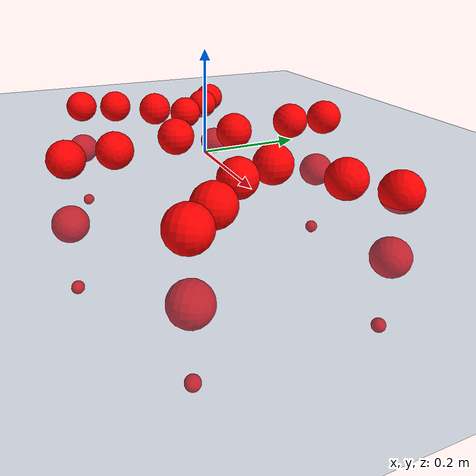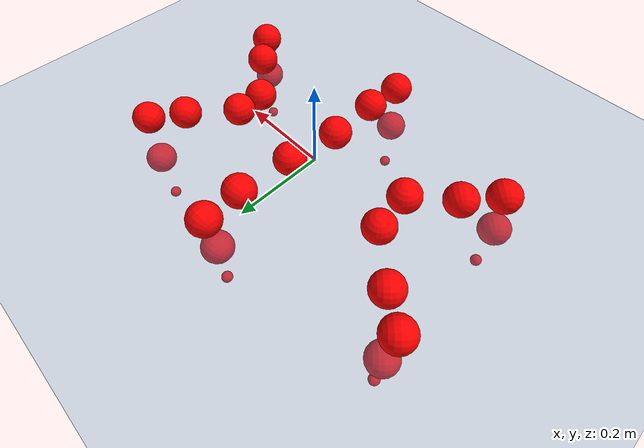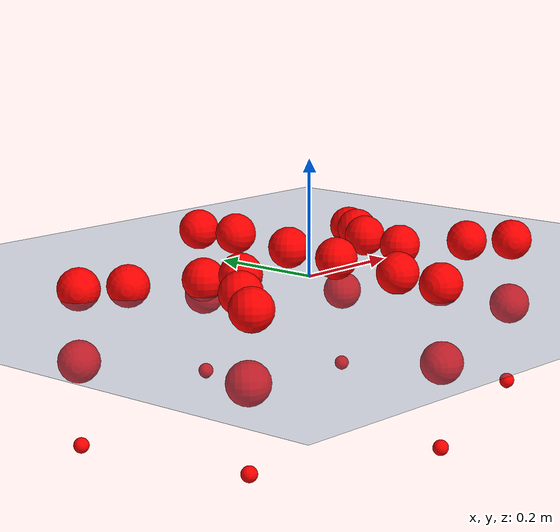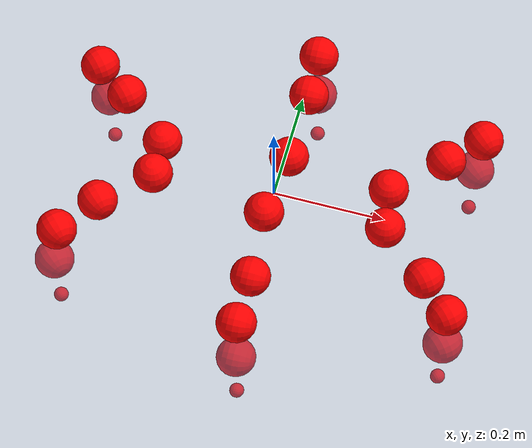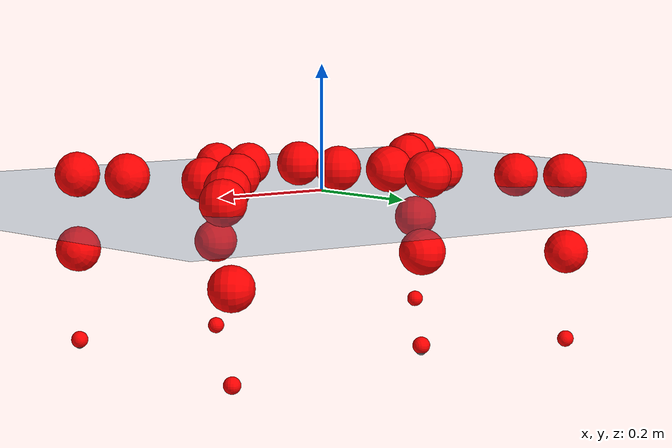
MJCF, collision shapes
<mujoco model="Golem">
  <compiler angle="radian" assetdir="assets" balanceinertia="true" inertiafromgeom="false"/>

  <option timestep="0.005" density="1.2" viscosity="2e-05"/>

  <size nkey="1"/>

  <visual>
    <quality shadowsize="8192"/>
    <map shadowclip="0.5"/>
  </visual>

  <default>
    <default class="/">
      <joint armature="0.01" damping="0.01" frictionloss="0.01"/>
      <geom contype="0" conaffinity="0" group="1" solref="-1000 -80"/>
      <site size="0.01 0.005 0.005" group="5"/>
      <general forcelimited="true" biastype="affine" gainprm="25" biasprm="0 -25 -0.5"/>
      <default class="visual">
        <geom type="mesh" group="2"/>
      </default>
      <default class="collision">
        <geom group="3"/>
      </default>
      <default class="foot">
        <geom size="0.01 0 0" condim="6" group="4" priority="1" solimp="0.015 1 0.01"/>
      </default>
      <default class="reward_collision_sphere">
        <geom group="5" rgba="1 0 0 1"/>
      </default>
    </default>
  </default>

  <asset>
    <texture type="skybox" colorspace="auto" name="//unnamed_texture_0" builtin="gradient" rgb1="0.95 0.95 0.95" rgb2="0.95 0.95 0.95" width="100" height="600"/>
    <texture type="2d" colorspace="auto" name="texplane" builtin="checker" rgb1="0.345 0.575 0.748" rgb2="0.345 0.575 0.748" markrgb="1 1 1" width="512" height="512"/>
    <material name="MatPlane" class="/" texture="texplane" texuniform="true" texrepeat="2 2" specular="0.9"/>
    <mesh name="body" class="/" file="body.stl" scale="0.001 0.001 0.001"/>
    <mesh name="coxa" class="/" file="coxa.stl" scale="0.001 0.001 0.001"/>
    <mesh name="femur" class="/" file="femur.stl" scale="0.001 0.001 0.001"/>
    <mesh name="tibia" class="/" file="tibia.stl" scale="0.001 0.001 0.001"/>
    <mesh name="tarsus" class="/" file="tarsus.stl" scale="0.001 0.001 0.001"/>
  </asset>

  <worldbody>
    <geom name="floor" class="/" size="100 100 0.125" type="plane" group="0" material="MatPlane"/>
    <light name="toplight_shadow" class="/" pos="0 0 5" dir="0.0990148 0.0990148 -0.990148" type="directional" ambient="0.04 0.04 0.04" diffuse="0.55 0.55 0.55" specular="0.12 0.12 0.12"/>
    <light name="toplight_fill" class="/" pos="0 0 5" dir="0.0990148 0.0990148 -0.990148" type="directional" castshadow="false" ambient="0.04 0.04 0.04" diffuse="0.3 0.3 0.3" specular="0.08 0.08 0.08"/>
    <body name="trunk" pos="0.00040642 -0.000696812 0.0017516" quat="1 0.000605945 0.000571389 0.000305474">
      <inertial pos="-0.00813639 -0.00178282 -0.0035544" quat="0.99964 0.018156 0.0163522 -0.0110616" mass="2.17708" diaginertia="0.0296344 0.00249924 0.000364694"/>
      <joint name="//unnamed_joint_0" type="free"/>
      <geom name="//unnamed_geom_1" class="/" pos="0 0 0.0347801" quat="1 0 0 0" type="mesh" rgba="0.9 0.9 0.9 1" mesh="body"/>
      <site name="imu" class="/" pos="0.175851 -0.00140362 0.108563" size="0.00883472"/>
      <camera name="track" class="/" pos="0 -1.56794 0" quat="0.707107 0.707107 0 0" mode="trackcom"/>
      <camera name="ego_camera" class="/" pos="0.171991 0 0.0543439" quat="-0.5 -0.5 0.5 0.5"/>
      <body name="coxa_RR" pos="-0.237911 -0.0647475 0.0394372" quat="0.382242 0.000671243 0.000109681 -0.924062">
        <inertial pos="-0.00113844 0.00555662 -0.000993634" quat="0.99997 -0.00352839 -0.00582958 0.00374536" mass="0.147043" diaginertia="0.0438016 0.00337155 0.000482438"/>
        <joint name="coxa_joint_RR" class="/" pos="0 0 0" axis="-0.0439626 -0.0462215 -0.997963" range="-3.00418 3.12672" armature="0.00799393" damping="0.0293579" frictionloss="0.00881214"/>
        <geom name="//unnamed_geom_2" class="/" type="mesh" rgba="0.2 0.2 0.2 1" mesh="coxa"/>
        <geom name="//unnamed_geom_3" class="reward_collision_sphere" size="0.0353389" pos="-0.0396902 0 0"/>
        <body name="femur_RR" pos="0.0686067 -0.0032955 -0.00535634" quat="0.498141 -0.502036 0.498923 0.500891">
          <inertial pos="-0.00178134 0.00140366 0.0058765" quat="0.999971 -0.000432136 -0.000232983 -0.00763859" mass="0.156286" diaginertia="0.0391543 0.00338353 0.000496234"/>
          <joint name="femur_joint_RR" class="/" pos="0 0 0" axis="0.0269419 0.0423396 -0.99874" range="-3.14892 3.08156" armature="0.00876732" damping="0.0194062" frictionloss="0.00693949"/>
          <geom name="//unnamed_geom_4" class="/" type="mesh" rgba="0.9 0.9 0.9 1" mesh="femur"/>
          <geom name="//unnamed_geom_5" class="reward_collision_sphere" size="0.0353389"/>
          <body name="tibia_RR" pos="0.00557352 -0.0875589 0.0125765" quat="-0.000146695 1 5.51831e-05 -6.3976e-05">
            <inertial pos="-0.00116968 0.011462 0.000960237" quat="0.998322 0.00585462 -0.00634792 0.0572613" mass="0.137744" diaginertia="0.035074 0.00284941 0.000457139"/>
            <joint name="tibia_joint_RR" class="/" pos="0 0 0" axis="-0.0327345 -0.012995 0.99938" stiffness="0.00329597" range="-3.27787 3.17556" armature="0.00779758" damping="0" frictionloss="0.010373"/>
            <geom name="//unnamed_geom_6" class="/" type="mesh" rgba="0.2 0.2 0.2 1" mesh="tibia"/>
            <geom name="//unnamed_geom_7" class="reward_collision_sphere" size="0.0353389"/>
            <body name="tarsus_RR" pos="0.110302 0.0116474 0.00540033" quat="0.999996 -0.000512279 0.00245572 -0.00133947">
              <inertial pos="0.0807569 -0.000958749 0.00711415" quat="0.525374 0.462277 0.520554 0.48919" mass="0.128415" diaginertia="0.0419552 0.00285403 0.000554334"/>
              <joint name="tarsus_joint_RR" class="/" pos="0 0 0" axis="0.00140659 0.00679755 0.999976" stiffness="0.008781" range="-3.00179 3.15089" armature="0.0100717" damping="0.000755135" frictionloss="0.00510461"/>
              <geom name="//unnamed_geom_8" class="/" type="mesh" rgba="0.9 0.9 0.9 1" mesh="tarsus"/>
              <geom name="foot_1" class="foot" size="0.00712572" pos="0.148177 0 0" quat="0 -0.707107 0 0.707107"/>
              <geom name="//unnamed_geom_10" class="reward_collision_sphere" size="0.0353389"/>
              <geom name="//unnamed_geom_11" class="reward_collision_sphere" size="0.0132521" pos="0.142223 0 0"/>
              <site name="foot_1" class="foot" pos="0.148177 0 0" quat="0 -0.707107 0 0.707107" size="0.00883472"/>
            </body>
          </body>
        </body>
      </body>
      <body name="coxa_RM" pos="-0.00171352 -0.0990073 0.0377882" quat="0.706226 -0.00599701 -0.00210194 -0.707958">
        <inertial pos="-0.0073196 0.00169055 0.00949985" quat="1 7.10959e-05 -2.11283e-05 -3.44293e-05" mass="0.14091" diaginertia="0.0407525 0.00261897 0.000465748"/>
        <joint name="coxa_joint_RM" class="/" pos="0 0 0" axis="-0.00689546 0.00164919 -0.999975" range="-3.1202 3.10937" armature="0.0050288" damping="0.0368849" frictionloss="0.00736129"/>
        <geom name="//unnamed_geom_12" class="/" type="mesh" rgba="0.2 0.2 0.2 1" mesh="coxa"/>
        <geom name="//unnamed_geom_13" class="reward_collision_sphere" size="0.0353389" pos="-0.0396902 0 0"/>
        <body name="femur_RM" pos="0.0829393 0.00964955 -0.0103876" quat="0.500162 -0.499999 0.499793 0.500046">
          <inertial pos="-0.0113754 0.00606106 0.00157582" quat="0.999887 0.00534501 -0.0122445 -0.00690591" mass="0.156955" diaginertia="0.0516939 0.00339746 0.000611783"/>
          <joint name="femur_joint_RM" class="/" pos="0 0 0" axis="0.0185872 -0.0336423 -0.999261" range="-3.16527 3.35121" armature="0.00797865" damping="0" frictionloss="0.0112305"/>
          <geom name="//unnamed_geom_14" class="/" type="mesh" rgba="0.9 0.9 0.9 1" mesh="femur"/>
          <geom name="//unnamed_geom_15" class="reward_collision_sphere" size="0.0353389"/>
          <body name="tibia_RM" pos="0.00639719 -0.0885412 -0.000499955" quat="-2.63728e-05 0.999995 0.00286706 0.00133793">
            <inertial pos="0.00631465 -0.0126855 0.000892071" quat="0.99954 0.009129 -0.0207821 0.0201057" mass="0.146099" diaginertia="0.0434799 0.00323604 0.000500608"/>
            <joint name="tibia_joint_RM" class="/" pos="0 0 0" axis="0.00483037 -0.00340879 0.999983" stiffness="0.0148584" range="-3.11247 3.00888" armature="0.00991529" damping="0" frictionloss="0.00913093"/>
            <geom name="//unnamed_geom_16" class="/" type="mesh" rgba="0.2 0.2 0.2 1" mesh="tibia"/>
            <geom name="//unnamed_geom_17" class="reward_collision_sphere" size="0.0353389"/>
            <body name="tarsus_RM" pos="0.128865 0.00447268 0.000304969" quat="1 -0.000145235 0.000387228 0.000552796">
              <inertial pos="0.0698061 -0.000256142 -0.00227892" quat="0.500938 0.500565 0.503982 0.494466" mass="0.115343" diaginertia="0.0394306 0.00282395 0.000398104"/>
              <joint name="tarsus_joint_RM" class="/" pos="0 0 0" axis="-0.00935943 -0.00310387 0.999951" stiffness="0.00239375" range="-2.97603 3.31817" armature="0.00799715" damping="0.00441205" frictionloss="0.012454"/>
              <geom name="//unnamed_geom_18" class="/" type="mesh" rgba="0.9 0.9 0.9 1" mesh="tarsus"/>
              <geom name="foot_2" class="foot" size="0.00665287" pos="0.148177 0 0" quat="0 -0.707107 0 0.707107"/>
              <geom name="//unnamed_geom_20" class="reward_collision_sphere" size="0.0353389"/>
              <geom name="//unnamed_geom_21" class="reward_collision_sphere" size="0.0132521" pos="0.142223 0 0"/>
              <site name="foot_2" class="foot" pos="0.148177 0 0" quat="0 -0.707107 0 0.707107" size="0.00883472"/>
            </body>
          </body>
        </body>
      </body>
      <body name="coxa_RF" pos="0.23641 -0.0562031 0.0252064" quat="0.924435 0.000651761 -0.000425281 -0.381339">
        <inertial pos="0.00142964 0.0108733 -0.00804697" quat="0.9986 0.0143286 0.00856248 0.0501871" mass="0.167103" diaginertia="0.0462522 0.00324112 0.00052029"/>
        <joint name="coxa_joint_RF" class="/" pos="0 0 0" axis="-0.0113302 0.0445596 -0.998942" stiffness="0.00958619" range="-3.36324 3.03501" armature="0.0128875" damping="0.0316144" frictionloss="0.00815622"/>
        <geom name="//unnamed_geom_22" class="/" type="mesh" rgba="0.2 0.2 0.2 1" mesh="coxa"/>
        <geom name="//unnamed_geom_23" class="reward_collision_sphere" size="0.0353389" pos="-0.0396902 0 0"/>
        <body name="femur_RF" pos="0.0795774 0.00493164 0.00559255" quat="0.499912 -0.499779 0.500125 0.500183">
          <inertial pos="0.0077177 -0.0107173 0.00138376" quat="0.999933 0.00116063 -0.00865491 0.00759577" mass="0.13305" diaginertia="0.036578 0.00257751 0.000417729"/>
          <joint name="femur_joint_RF" class="/" pos="0 0 0" axis="-3.42097e-05 0.000185969 -1" range="-3.15489 3.23465" armature="0.00899784" damping="0.010268" frictionloss="0.0109455"/>
          <geom name="//unnamed_geom_24" class="/" type="mesh" rgba="0.9 0.9 0.9 1" mesh="femur"/>
          <geom name="//unnamed_geom_25" class="reward_collision_sphere" size="0.0353389"/>
          <body name="tibia_RF" pos="-0.00135848 -0.0792482 -0.0042862" quat="0.000464782 1 -8.88472e-05 0.000329195">
            <inertial pos="0.00121022 -3.2516e-05 0.0121403" quat="0.998849 0.00840813 0.0435394 -0.018282" mass="0.143261" diaginertia="0.0426982 0.00344851 0.0004365"/>
            <joint name="tibia_joint_RF" class="/" pos="0 0 0" axis="-0.0176167 -0.00665035 0.999823" stiffness="6.64171e-05" range="-3.16806 3.02988" armature="0.00944413" damping="0.00570012" frictionloss="0.00633181"/>
            <geom name="//unnamed_geom_26" class="/" type="mesh" rgba="0.2 0.2 0.2 1" mesh="tibia"/>
            <geom name="//unnamed_geom_27" class="reward_collision_sphere" size="0.0353389"/>
            <body name="tarsus_RF" pos="0.115982 -0.000601806 -0.00147602" quat="0.999992 0.0021733 0.00243021 -0.0023511">
              <inertial pos="0.0839538 -0.0011185 -0.00260009" quat="0.493925 0.499864 0.502923 0.503232" mass="0.125029" diaginertia="0.038567 0.00308319 0.000502267"/>
              <joint name="tarsus_joint_RF" class="/" pos="0 0 0" axis="-0.0282728 0.00955554 0.999555" stiffness="0.0237693" range="-3.30823 3.13705" armature="0.00885346" damping="0.0449162" frictionloss="0.00850424"/>
              <geom name="//unnamed_geom_28" class="/" type="mesh" rgba="0.9 0.9 0.9 1" mesh="tarsus"/>
              <geom name="foot_3" class="foot" size="0.00825021" pos="0.148177 0 0" quat="0 -0.707107 0 0.707107"/>
              <geom name="//unnamed_geom_30" class="reward_collision_sphere" size="0.0353389"/>
              <geom name="//unnamed_geom_31" class="reward_collision_sphere" size="0.0132521" pos="0.142223 0 0"/>
              <site name="foot_3" class="foot" pos="0.148177 0 0" quat="0 -0.707107 0 0.707107" size="0.00883472"/>
            </body>
          </body>
        </body>
      </body>
      <body name="coxa_LR" pos="-0.24378 0.0679478 0.0218121" quat="0.381837 -0.000819404 -0.000259583 0.924229">
        <inertial pos="0.00767095 0.0083512 0.000250672" quat="0.999187 0.00775793 -0.0389745 -0.0067792" mass="0.150054" diaginertia="0.0374743 0.00355608 0.000599406"/>
        <joint name="coxa_joint_LR" class="/" pos="0 0 0" axis="-0.00404506 -0.00312107 -0.999987" range="-3.02418 3.04967" armature="0.00716933" damping="0.0115919" frictionloss="0.00933233"/>
        <geom name="//unnamed_geom_32" class="/" type="mesh" rgba="0.2 0.2 0.2 1" mesh="coxa"/>
        <geom name="//unnamed_geom_33" class="reward_collision_sphere" size="0.0353389" pos="-0.0396902 0 0"/>
        <body name="femur_LR" pos="0.081419 0.00707049 -0.00743338" quat="0.499262 -0.499972 0.500617 0.500148">
          <inertial pos="6.82992e-05 0.0128744 -0.00091822" quat="0.999998 0.00182698 -0.000178291 0.000947997" mass="0.134671" diaginertia="0.0461351 0.00268583 0.000543099"/>
          <joint name="femur_joint_LR" class="/" pos="0 0 0" axis="-0.000461693 0.00353662 0.999994" stiffness="0.00640112" range="-3.34208 3.11227" armature="0.00874521" damping="0.0715703" frictionloss="0.00890977"/>
          <geom name="//unnamed_geom_34" class="/" type="mesh" rgba="0.9 0.9 0.9 1" mesh="femur"/>
          <geom name="//unnamed_geom_35" class="reward_collision_sphere" size="0.0353389"/>
          <body name="tibia_LR" pos="0.00120097 -0.0786853 0.0122809" quat="-0.00269895 0.999996 0.000122543 -0.000661465">
            <inertial pos="-0.00588925 0.00824855 0.00592663" quat="0.998845 -0.0264321 0.0102437 0.038787" mass="0.135556" diaginertia="0.0441842 0.0031312 0.000463197"/>
            <joint name="tibia_joint_LR" class="/" pos="0 0 0" axis="0.00968802 -0.0105879 -0.999897" stiffness="0.0027992" range="-3.24975 2.93189" armature="0.00758489" damping="0.0343631" frictionloss="0.00864367"/>
            <geom name="//unnamed_geom_36" class="/" type="mesh" rgba="0.2 0.2 0.2 1" mesh="tibia"/>
            <geom name="//unnamed_geom_37" class="reward_collision_sphere" size="0.0353389"/>
            <body name="tarsus_LR" pos="0.122829 0.0034244 0.012298" quat="0.999993 -0.00261721 -0.00228034 0.00159384">
              <inertial pos="0.0796452 0.0114348 0.0101465" quat="0.489698 0.507128 0.51163 0.491174" mass="0.14311" diaginertia="0.0392938 0.00321651 0.000543781"/>
              <joint name="tarsus_joint_LR" class="/" pos="0 0 0" axis="0.0462147 0.0209093 -0.998713" stiffness="0.0506201" range="-3.05743 3.25993" armature="0.0122043" damping="0.0490181" frictionloss="0.0115089"/>
              <geom name="//unnamed_geom_38" class="/" type="mesh" rgba="0.9 0.9 0.9 1" mesh="tarsus"/>
              <geom name="foot_4" class="foot" size="0.00466127" pos="0.148177 0 0" quat="0.707107 0 -0.707107 0"/>
              <geom name="//unnamed_geom_40" class="reward_collision_sphere" size="0.0353389"/>
              <geom name="//unnamed_geom_41" class="reward_collision_sphere" size="0.0132521" pos="0.142223 0 0"/>
              <site name="foot_4" class="foot" pos="0.148177 0 0" quat="0.707107 0 -0.707107 0" size="0.00883472"/>
            </body>
          </body>
        </body>
      </body>
      <body name="coxa_LM" pos="0.0121109 0.0982339 0.038133" quat="0.707282 0.000193639 -8.39384e-05 0.706932">
        <inertial pos="0.00331704 0.00754763 -0.00328029" quat="0.998819 0.000641194 0.00495166 -0.0483195" mass="0.130099" diaginertia="0.0333473 0.00251432 0.000408389"/>
        <joint name="coxa_joint_LM" class="/" pos="0 0 0" axis="0.0398935 -0.0471389 -0.998091" stiffness="0.015673" range="-3.1055 3.10829" armature="0.00775213" damping="0" frictionloss="0.00608318"/>
        <geom name="//unnamed_geom_42" class="/" type="mesh" rgba="0.2 0.2 0.2 1" mesh="coxa"/>
        <geom name="//unnamed_geom_43" class="reward_collision_sphere" size="0.0353389" pos="-0.0396902 0 0"/>
        <body name="femur_LM" pos="0.0874858 -0.00275422 0.0076395" quat="0.500195 -0.500387 0.499748 0.49967">
          <inertial pos="-0.00749605 0.00013235 0.0018431" quat="0.999194 0.0341051 0.00695548 0.0199732" mass="0.117489" diaginertia="0.0411087 0.00227825 0.000439232"/>
          <joint name="femur_joint_LM" class="/" pos="0 0 0" axis="0.000591477 -0.00132289 0.999999" range="-3.1836 3.15423" armature="0.00852329" damping="0" frictionloss="0.0120123"/>
          <geom name="//unnamed_geom_44" class="/" type="mesh" rgba="0.9 0.9 0.9 1" mesh="femur"/>
          <geom name="//unnamed_geom_45" class="reward_collision_sphere" size="0.0353389"/>
          <body name="tibia_LM" pos="0.00278233 -0.0859166 0.00386791" quat="0.00257779 0.99999 0.000694856 -0.00364644">
            <inertial pos="-0.00650134 0.00200899 0.00953163" quat="0.99871 -0.0411737 0.0224448 -0.0194749" mass="0.136452" diaginertia="0.0400046 0.00252826 0.000488014"/>
            <joint name="tibia_joint_LM" class="/" pos="0 0 0" axis="0.0269319 0.00502708 -0.999625" stiffness="0.0529589" range="-3.1639 3.14336" armature="0.00814725" damping="0" frictionloss="0.0126709"/>
            <geom name="//unnamed_geom_46" class="/" type="mesh" rgba="0.2 0.2 0.2 1" mesh="tibia"/>
            <geom name="//unnamed_geom_47" class="reward_collision_sphere" size="0.0353389"/>
            <body name="tarsus_LM" pos="0.117569 -0.00923611 0.00162373" quat="0.999988 -0.000186061 -0.00434541 0.00209864">
              <inertial pos="0.0774895 0.000736571 -0.00537157" quat="0.46634 0.526216 0.52257 0.482228" mass="0.120396" diaginertia="0.0340243 0.00307412 0.000471426"/>
              <joint name="tarsus_joint_LM" class="/" pos="0 0 0" axis="0.0300601 0.0524829 -0.998169" range="-3.12818 3.12539" armature="0.008523" damping="0.0313457" frictionloss="0.00438098"/>
              <geom name="//unnamed_geom_48" class="/" type="mesh" rgba="0.9 0.9 0.9 1" mesh="tarsus"/>
              <geom name="foot_5" class="foot" size="0.00884403" pos="0.148177 0 0" quat="0.707107 0 -0.707107 0"/>
              <geom name="//unnamed_geom_50" class="reward_collision_sphere" size="0.0353389"/>
              <geom name="//unnamed_geom_51" class="reward_collision_sphere" size="0.0132521" pos="0.142223 0 0"/>
              <site name="foot_5" class="foot" pos="0.148177 0 0" quat="0.707107 0 -0.707107 0" size="0.00883472"/>
            </body>
          </body>
        </body>
      </body>
      <body name="coxa_LF" pos="0.225011 0.0704116 0.0347675" quat="0.924059 0.000185171 -0.000285787 0.382249">
        <inertial pos="0.00198026 0.001338 -0.00954438" quat="0.999224 -0.0130116 0.0348524 0.0129511" mass="0.146589" diaginertia="0.0449824 0.00253199 0.000505777"/>
        <joint name="coxa_joint_LF" class="/" pos="0 0 0" axis="-0.0417742 0.0134547 -0.999036" range="-3.12995 3.1195" armature="0.0130299" damping="0.0113681" frictionloss="0.00321919"/>
        <geom name="//unnamed_geom_52" class="/" type="mesh" rgba="0.2 0.2 0.2 1" mesh="coxa"/>
        <geom name="//unnamed_geom_53" class="reward_collision_sphere" size="0.0353389" pos="-0.0396902 0 0"/>
        <body name="femur_LF" pos="0.0810629 0.00303602 -0.00894073" quat="0.499904 -0.500023 0.499942 0.50013">
          <inertial pos="0.0123608 -0.00238354 -0.0128187" quat="0.999991 -0.00331124 0.00221885 -0.00160926" mass="0.148328" diaginertia="0.035818 0.00301696 0.0004902"/>
          <joint name="femur_joint_LF" class="/" pos="0 0 0" axis="0.00233707 -0.00465267 0.999986" range="-3.11161 3.11756" armature="0.00594893" damping="0" frictionloss="0.00812186"/>
          <geom name="//unnamed_geom_54" class="/" type="mesh" rgba="0.9 0.9 0.9 1" mesh="femur"/>
          <geom name="//unnamed_geom_55" class="reward_collision_sphere" size="0.0353389"/>
          <body name="tibia_LF" pos="0.0110409 -0.0839556 0.00662036" quat="-0.000845302 0.999995 0.00279109 0.000966582">
            <inertial pos="0.00425071 0.0121863 -0.00285087" quat="1 0.000120323 0.000698635 -0.000117745" mass="0.152975" diaginertia="0.0540135 0.00338914 0.000530894"/>
            <joint name="tibia_joint_LF" class="/" pos="0 0 0" axis="-0.00895288 0.00329763 -0.999954" stiffness="0.011621" range="-3.17057 3.14096" armature="0.00528395" damping="0.0367558" frictionloss="0.00952578"/>
            <geom name="//unnamed_geom_56" class="/" type="mesh" rgba="0.2 0.2 0.2 1" mesh="tibia"/>
            <geom name="//unnamed_geom_57" class="reward_collision_sphere" size="0.0353389"/>
            <body name="tarsus_LF" pos="0.125465 0.00164456 -0.0115116" quat="1 -7.96113e-05 -0.000155577 0.000167594">
              <inertial pos="0.0792537 -0.0055843 0.000302087" quat="0.501542 0.473295 0.518541 0.505532" mass="0.175429" diaginertia="0.0446967 0.0037866 0.000518484"/>
              <joint name="tarsus_joint_LF" class="/" pos="0 0 0" axis="-0.0166464 -0.0104395 -0.999807" range="-3.16462 3.11906" armature="0.00470437" damping="0.0519332" frictionloss="0.014091"/>
              <geom name="//unnamed_geom_58" class="/" type="mesh" rgba="0.9 0.9 0.9 1" mesh="tarsus"/>
              <geom name="foot_6" class="foot" size="0.00773218" pos="0.148177 0 0" quat="0.707107 0 -0.707107 0"/>
              <geom name="//unnamed_geom_60" class="reward_collision_sphere" size="0.0353389"/>
              <geom name="//unnamed_geom_61" class="reward_collision_sphere" size="0.0132521" pos="0.142223 0 0"/>
              <site name="foot_6" class="foot" pos="0.148177 0 0" quat="0.707107 0 -0.707107 0" size="0.00883472"/>
            </body>
          </body>
        </body>
      </body>
    </body>
  </worldbody>

  <contact>
    <pair class="/" geom1="floor" geom2="foot_1" name="//unnamed_contact_0"/>
    <pair class="/" geom1="floor" geom2="foot_2" name="//unnamed_contact_1"/>
    <pair class="/" geom1="floor" geom2="foot_3" name="//unnamed_contact_2"/>
    <pair class="/" geom1="floor" geom2="foot_4" name="//unnamed_contact_3"/>
    <pair class="/" geom1="floor" geom2="foot_5" name="//unnamed_contact_4"/>
    <pair class="/" geom1="floor" geom2="foot_6" name="//unnamed_contact_5"/>
  </contact>

  <actuator>
    <general name="coxa_joint_RR" class="/" joint="coxa_joint_RR" forcerange="-7.22048 7.22048" gainprm="16.724" biasprm="0 -16.724 -0.470432"/>
    <general name="femur_joint_RR" class="/" joint="femur_joint_RR" forcerange="-6.30956 6.30956" gainprm="16.724" biasprm="0 -16.724 -0.470432"/>
    <general name="tibia_joint_RR" class="/" joint="tibia_joint_RR" forcerange="-7.00811 7.00811" gainprm="16.724" biasprm="0 -16.724 -0.470432"/>
    <general name="tarsus_joint_RR" class="/" joint="tarsus_joint_RR" forcerange="-4.08095 4.08095" gainprm="16.724" biasprm="0 -16.724 -0.470432"/>
    <general name="coxa_joint_RM" class="/" joint="coxa_joint_RM" forcerange="-6.5626 6.5626" gainprm="16.724" biasprm="0 -16.724 -0.470432"/>
    <general name="femur_joint_RM" class="/" joint="femur_joint_RM" forcerange="-6.56207 6.56207" gainprm="16.724" biasprm="0 -16.724 -0.470432"/>
    <general name="tibia_joint_RM" class="/" joint="tibia_joint_RM" forcerange="-6.81378 6.81378" gainprm="16.724" biasprm="0 -16.724 -0.470432"/>
    <general name="tarsus_joint_RM" class="/" joint="tarsus_joint_RM" forcerange="-3.6759 3.6759" gainprm="16.724" biasprm="0 -16.724 -0.470432"/>
    <general name="coxa_joint_RF" class="/" joint="coxa_joint_RF" forcerange="-5.1417 5.1417" gainprm="16.724" biasprm="0 -16.724 -0.470432"/>
    <general name="femur_joint_RF" class="/" joint="femur_joint_RF" forcerange="-9.0849 9.0849" gainprm="16.724" biasprm="0 -16.724 -0.470432"/>
    <general name="tibia_joint_RF" class="/" joint="tibia_joint_RF" forcerange="-4.84311 4.84311" gainprm="16.724" biasprm="0 -16.724 -0.470432"/>
    <general name="tarsus_joint_RF" class="/" joint="tarsus_joint_RF" forcerange="-8.19511 8.19511" gainprm="16.724" biasprm="0 -16.724 -0.470432"/>
    <general name="coxa_joint_LR" class="/" joint="coxa_joint_LR" forcerange="-7.91041 7.91041" gainprm="16.724" biasprm="0 -16.724 -0.470432"/>
    <general name="femur_joint_LR" class="/" joint="femur_joint_LR" forcerange="-6.80013 6.80013" gainprm="16.724" biasprm="0 -16.724 -0.470432"/>
    <general name="tibia_joint_LR" class="/" joint="tibia_joint_LR" forcerange="-6.41107 6.41107" gainprm="16.724" biasprm="0 -16.724 -0.470432"/>
    <general name="tarsus_joint_LR" class="/" joint="tarsus_joint_LR" forcerange="-7.9281 7.9281" gainprm="16.724" biasprm="0 -16.724 -0.470432"/>
    <general name="coxa_joint_LM" class="/" joint="coxa_joint_LM" forcerange="-6.60732 6.60732" gainprm="16.724" biasprm="0 -16.724 -0.470432"/>
    <general name="femur_joint_LM" class="/" joint="femur_joint_LM" forcerange="-8.05099 8.05099" gainprm="16.724" biasprm="0 -16.724 -0.470432"/>
    <general name="tibia_joint_LM" class="/" joint="tibia_joint_LM" forcerange="-7.30262 7.30262" gainprm="16.724" biasprm="0 -16.724 -0.470432"/>
    <general name="tarsus_joint_LM" class="/" joint="tarsus_joint_LM" forcerange="-6.69844 6.69844" gainprm="16.724" biasprm="0 -16.724 -0.470432"/>
    <general name="coxa_joint_LF" class="/" joint="coxa_joint_LF" forcerange="-8.77741 8.77741" gainprm="16.724" biasprm="0 -16.724 -0.470432"/>
    <general name="femur_joint_LF" class="/" joint="femur_joint_LF" forcerange="-7.91654 7.91654" gainprm="16.724" biasprm="0 -16.724 -0.470432"/>
    <general name="tibia_joint_LF" class="/" joint="tibia_joint_LF" forcerange="-4.99985 4.99985" gainprm="16.724" biasprm="0 -16.724 -0.470432"/>
    <general name="tarsus_joint_LF" class="/" joint="tarsus_joint_LF" forcerange="-7.21513 7.21513" gainprm="16.724" biasprm="0 -16.724 -0.470432"/>
  </actuator>

  <sensor>
    <gyro site="imu" name="imu_angular_velocity"/>
    <velocimeter site="imu" name="imu_linear_velocity"/>
    <framelinvel objtype="site" objname="foot_1" name="foot_1_global_linear_velocity"/>
    <framelinvel objtype="site" objname="foot_2" name="foot_2_global_linear_velocity"/>
    <framelinvel objtype="site" objname="foot_3" name="foot_3_global_linear_velocity"/>
    <framelinvel objtype="site" objname="foot_4" name="foot_4_global_linear_velocity"/>
    <framelinvel objtype="site" objname="foot_5" name="foot_5_global_linear_velocity"/>
    <framelinvel objtype="site" objname="foot_6" name="foot_6_global_linear_velocity"/>
  </sensor>

  <keyframe>
    <key name="home" qpos="0 0 0.1457 1 0 0 0 0 0 0 0 0 0 0 0 0 0 0 0 0 0 0 0 0 0 0 0 0 0 0 0"/>
  </keyframe>
</mujoco>
